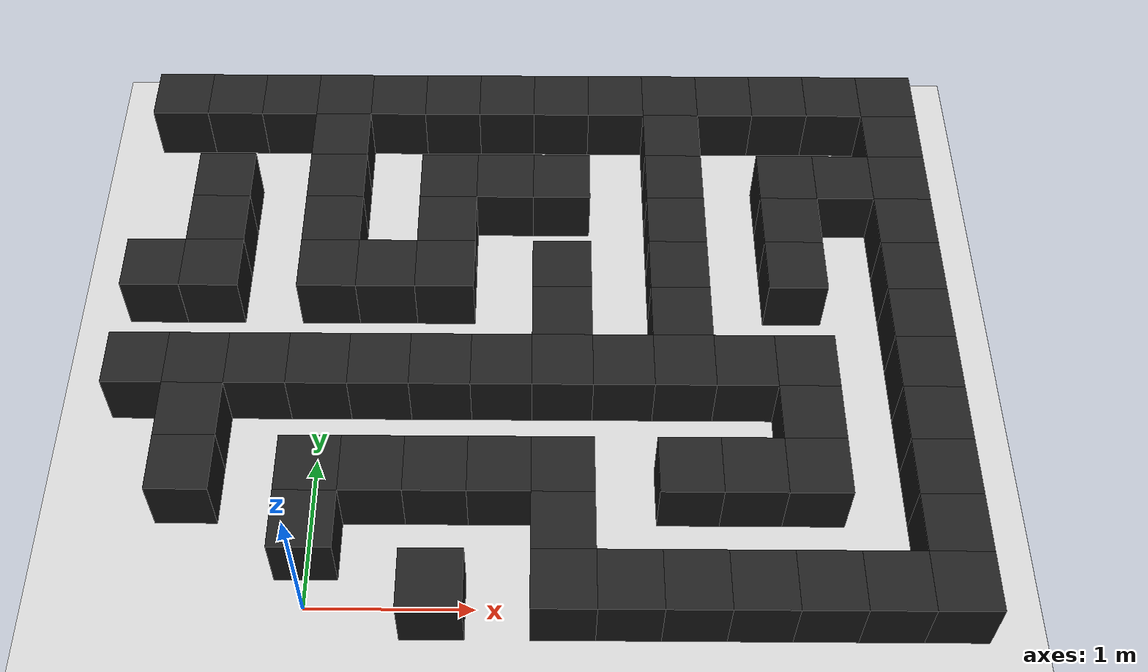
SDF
<sdf version="1.6">
 <world name="maze">
  <include><uri>model://models/sun</uri></include>
  <include><uri>model://models/ground_plane</uri></include>
  <model name="walls">
   <static>true</static>
   <link name="wall_1">
    <pose>3.75 3.75 0.2 0 0 0</pose>
    <visual name="wall_1_visual">
     <geometry><box><size>0.375 0.375 0.4</size></box></geometry>
     <material>
      <script><uri>file://media/materials/scripts/gazebo.material</uri><name>Gazebo/Black</name></script>
     </material>
    </visual>
    <collision name="wall_1_collision"><geometry><box><size>0.375 0.375 0.4</size></box></geometry></collision>
   </link>
   <link name="wall_2">
    <pose>3.75 3.375 0.2 0 0 0</pose>
    <visual name="wall_2_visual">
     <geometry><box><size>0.375 0.375 0.4</size></box></geometry>
     <material>
      <script><uri>file://media/materials/scripts/gazebo.material</uri><name>Gazebo/Black</name></script>
     </material>
    </visual>
    <collision name="wall_2_collision"><geometry><box><size>0.375 0.375 0.4</size></box></geometry></collision>
   </link>
   <link name="wall_3">
    <pose>3.75 3.0 0.2 0 0 0</pose>
    <visual name="wall_3_visual">
     <geometry><box><size>0.375 0.375 0.4</size></box></geometry>
     <material>
      <script><uri>file://media/materials/scripts/gazebo.material</uri><name>Gazebo/Black</name></script>
     </material>
    </visual>
    <collision name="wall_3_collision"><geometry><box><size>0.375 0.375 0.4</size></box></geometry></collision>
   </link>
   <link name="wall_4">
    <pose>3.75 2.625 0.2 0 0 0</pose>
    <visual name="wall_4_visual">
     <geometry><box><size>0.375 0.375 0.4</size></box></geometry>
     <material>
      <script><uri>file://media/materials/scripts/gazebo.material</uri><name>Gazebo/Black</name></script>
     </material>
    </visual>
    <collision name="wall_4_collision"><geometry><box><size>0.375 0.375 0.4</size></box></geometry></collision>
   </link>
   <link name="wall_5">
    <pose>3.75 2.25 0.2 0 0 0</pose>
    <visual name="wall_5_visual">
     <geometry><box><size>0.375 0.375 0.4</size></box></geometry>
     <material>
      <script><uri>file://media/materials/scripts/gazebo.material</uri><name>Gazebo/Black</name></script>
     </material>
    </visual>
    <collision name="wall_5_collision"><geometry><box><size>0.375 0.375 0.4</size></box></geometry></collision>
   </link>
   <link name="wall_6">
    <pose>3.75 1.875 0.2 0 0 0</pose>
    <visual name="wall_6_visual">
     <geometry><box><size>0.375 0.375 0.4</size></box></geometry>
     <material>
      <script><uri>file://media/materials/scripts/gazebo.material</uri><name>Gazebo/Black</name></script>
     </material>
    </visual>
    <collision name="wall_6_collision"><geometry><box><size>0.375 0.375 0.4</size></box></geometry></collision>
   </link>
   <link name="wall_7">
    <pose>3.75 1.5 0.2 0 0 0</pose>
    <visual name="wall_7_visual">
     <geometry><box><size>0.375 0.375 0.4</size></box></geometry>
     <material>
      <script><uri>file://media/materials/scripts/gazebo.material</uri><name>Gazebo/Black</name></script>
     </material>
    </visual>
    <collision name="wall_7_collision"><geometry><box><size>0.375 0.375 0.4</size></box></geometry></collision>
   </link>
   <link name="wall_8">
    <pose>3.75 1.125 0.2 0 0 0</pose>
    <visual name="wall_8_visual">
     <geometry><box><size>0.375 0.375 0.4</size></box></geometry>
     <material>
      <script><uri>file://media/materials/scripts/gazebo.material</uri><name>Gazebo/Black</name></script>
     </material>
    </visual>
    <collision name="wall_8_collision"><geometry><box><size>0.375 0.375 0.4</size></box></geometry></collision>
   </link>
   <link name="wall_9">
    <pose>3.75 0.75 0.2 0 0 0</pose>
    <visual name="wall_9_visual">
     <geometry><box><size>0.375 0.375 0.4</size></box></geometry>
     <material>
      <script><uri>file://media/materials/scripts/gazebo.material</uri><name>Gazebo/Black</name></script>
     </material>
    </visual>
    <collision name="wall_9_collision"><geometry><box><size>0.375 0.375 0.4</size></box></geometry></collision>
   </link>
   <link name="wall_10">
    <pose>3.75 0.375 0.2 0 0 0</pose>
    <visual name="wall_10_visual">
     <geometry><box><size>0.375 0.375 0.4</size></box></geometry>
     <material>
      <script><uri>file://media/materials/scripts/gazebo.material</uri><name>Gazebo/Black</name></script>
     </material>
    </visual>
    <collision name="wall_10_collision"><geometry><box><size>0.375 0.375 0.4</size></box></geometry></collision>
   </link>
   <link name="wall_11">
    <pose>3.75 0.0 0.2 0 0 0</pose>
    <visual name="wall_11_visual">
     <geometry><box><size>0.375 0.375 0.4</size></box></geometry>
     <material>
      <script><uri>file://media/materials/scripts/gazebo.material</uri><name>Gazebo/Black</name></script>
     </material>
    </visual>
    <collision name="wall_11_collision"><geometry><box><size>0.375 0.375 0.4</size></box></geometry></collision>
   </link>
   <link name="wall_22">
    <pose>3.375 3.75 0.2 0 0 0</pose>
    <visual name="wall_22_visual">
     <geometry><box><size>0.375 0.375 0.4</size></box></geometry>
     <material>
      <script><uri>file://media/materials/scripts/gazebo.material</uri><name>Gazebo/Black</name></script>
     </material>
    </visual>
    <collision name="wall_22_collision"><geometry><box><size>0.375 0.375 0.4</size></box></geometry></collision>
   </link>
   <link name="wall_23">
    <pose>3.375 3.0 0.2 0 0 0</pose>
    <visual name="wall_23_visual">
     <geometry><box><size>0.375 0.375 0.4</size></box></geometry>
     <material>
      <script><uri>file://media/materials/scripts/gazebo.material</uri><name>Gazebo/Black</name></script>
     </material>
    </visual>
    <collision name="wall_23_collision"><geometry><box><size>0.375 0.375 0.4</size></box></geometry></collision>
   </link>
   <link name="wall_24">
    <pose>3.375 0.0 0.2 0 0 0</pose>
    <visual name="wall_24_visual">
     <geometry><box><size>0.375 0.375 0.4</size></box></geometry>
     <material>
      <script><uri>file://media/materials/scripts/gazebo.material</uri><name>Gazebo/Black</name></script>
     </material>
    </visual>
    <collision name="wall_24_collision"><geometry><box><size>0.375 0.375 0.4</size></box></geometry></collision>
   </link>
   <link name="wall_26">
    <pose>3.0 3.75 0.2 0 0 0</pose>
    <visual name="wall_26_visual">
     <geometry><box><size>0.375 0.375 0.4</size></box></geometry>
     <material>
      <script><uri>file://media/materials/scripts/gazebo.material</uri><name>Gazebo/Black</name></script>
     </material>
    </visual>
    <collision name="wall_26_collision"><geometry><box><size>0.375 0.375 0.4</size></box></geometry></collision>
   </link>
   <link name="wall_27">
    <pose>3.0 3.0 0.2 0 0 0</pose>
    <visual name="wall_27_visual">
     <geometry><box><size>0.375 0.375 0.4</size></box></geometry>
     <material>
      <script><uri>file://media/materials/scripts/gazebo.material</uri><name>Gazebo/Black</name></script>
     </material>
    </visual>
    <collision name="wall_27_collision"><geometry><box><size>0.375 0.375 0.4</size></box></geometry></collision>
   </link>
   <link name="wall_28">
    <pose>3.0 2.625 0.2 0 0 0</pose>
    <visual name="wall_28_visual">
     <geometry><box><size>0.375 0.375 0.4</size></box></geometry>
     <material>
      <script><uri>file://media/materials/scripts/gazebo.material</uri><name>Gazebo/Black</name></script>
     </material>
    </visual>
    <collision name="wall_28_collision"><geometry><box><size>0.375 0.375 0.4</size></box></geometry></collision>
   </link>
   <link name="wall_29">
    <pose>3.0 2.25 0.2 0 0 0</pose>
    <visual name="wall_29_visual">
     <geometry><box><size>0.375 0.375 0.4</size></box></geometry>
     <material>
      <script><uri>file://media/materials/scripts/gazebo.material</uri><name>Gazebo/Black</name></script>
     </material>
    </visual>
    <collision name="wall_29_collision"><geometry><box><size>0.375 0.375 0.4</size></box></geometry></collision>
   </link>
   <link name="wall_30">
    <pose>3.0 1.5 0.2 0 0 0</pose>
    <visual name="wall_30_visual">
     <geometry><box><size>0.375 0.375 0.4</size></box></geometry>
     <material>
      <script><uri>file://media/materials/scripts/gazebo.material</uri><name>Gazebo/Black</name></script>
     </material>
    </visual>
    <collision name="wall_30_collision"><geometry><box><size>0.375 0.375 0.4</size></box></geometry></collision>
   </link>
   <link name="wall_31">
    <pose>3.0 1.125 0.2 0 0 0</pose>
    <visual name="wall_31_visual">
     <geometry><box><size>0.375 0.375 0.4</size></box></geometry>
     <material>
      <script><uri>file://media/materials/scripts/gazebo.material</uri><name>Gazebo/Black</name></script>
     </material>
    </visual>
    <collision name="wall_31_collision"><geometry><box><size>0.375 0.375 0.4</size></box></geometry></collision>
   </link>
   <link name="wall_32">
    <pose>3.0 0.75 0.2 0 0 0</pose>
    <visual name="wall_32_visual">
     <geometry><box><size>0.375 0.375 0.4</size></box></geometry>
     <material>
      <script><uri>file://media/materials/scripts/gazebo.material</uri><name>Gazebo/Black</name></script>
     </material>
    </visual>
    <collision name="wall_32_collision"><geometry><box><size>0.375 0.375 0.4</size></box></geometry></collision>
   </link>
   <link name="wall_33">
    <pose>3.0 0.0 0.2 0 0 0</pose>
    <visual name="wall_33_visual">
     <geometry><box><size>0.375 0.375 0.4</size></box></geometry>
     <material>
      <script><uri>file://media/materials/scripts/gazebo.material</uri><name>Gazebo/Black</name></script>
     </material>
    </visual>
    <collision name="wall_33_collision"><geometry><box><size>0.375 0.375 0.4</size></box></geometry></collision>
   </link>
   <link name="wall_42">
    <pose>2.625 3.75 0.2 0 0 0</pose>
    <visual name="wall_42_visual">
     <geometry><box><size>0.375 0.375 0.4</size></box></geometry>
     <material>
      <script><uri>file://media/materials/scripts/gazebo.material</uri><name>Gazebo/Black</name></script>
     </material>
    </visual>
    <collision name="wall_42_collision"><geometry><box><size>0.375 0.375 0.4</size></box></geometry></collision>
   </link>
   <link name="wall_43">
    <pose>2.625 1.5 0.2 0 0 0</pose>
    <visual name="wall_43_visual">
     <geometry><box><size>0.375 0.375 0.4</size></box></geometry>
     <material>
      <script><uri>file://media/materials/scripts/gazebo.material</uri><name>Gazebo/Black</name></script>
     </material>
    </visual>
    <collision name="wall_43_collision"><geometry><box><size>0.375 0.375 0.4</size></box></geometry></collision>
   </link>
   <link name="wall_44">
    <pose>2.625 0.75 0.2 0 0 0</pose>
    <visual name="wall_44_visual">
     <geometry><box><size>0.375 0.375 0.4</size></box></geometry>
     <material>
      <script><uri>file://media/materials/scripts/gazebo.material</uri><name>Gazebo/Black</name></script>
     </material>
    </visual>
    <collision name="wall_44_collision"><geometry><box><size>0.375 0.375 0.4</size></box></geometry></collision>
   </link>
   <link name="wall_45">
    <pose>2.625 0.0 0.2 0 0 0</pose>
    <visual name="wall_45_visual">
     <geometry><box><size>0.375 0.375 0.4</size></box></geometry>
     <material>
      <script><uri>file://media/materials/scripts/gazebo.material</uri><name>Gazebo/Black</name></script>
     </material>
    </visual>
    <collision name="wall_45_collision"><geometry><box><size>0.375 0.375 0.4</size></box></geometry></collision>
   </link>
   <link name="wall_49">
    <pose>2.25 3.75 0.2 0 0 0</pose>
    <visual name="wall_49_visual">
     <geometry><box><size>0.375 0.375 0.4</size></box></geometry>
     <material>
      <script><uri>file://media/materials/scripts/gazebo.material</uri><name>Gazebo/Black</name></script>
     </material>
    </visual>
    <collision name="wall_49_collision"><geometry><box><size>0.375 0.375 0.4</size></box></geometry></collision>
   </link>
   <link name="wall_50">
    <pose>2.25 3.375 0.2 0 0 0</pose>
    <visual name="wall_50_visual">
     <geometry><box><size>0.375 0.375 0.4</size></box></geometry>
     <material>
      <script><uri>file://media/materials/scripts/gazebo.material</uri><name>Gazebo/Black</name></script>
     </material>
    </visual>
    <collision name="wall_50_collision"><geometry><box><size>0.375 0.375 0.4</size></box></geometry></collision>
   </link>
   <link name="wall_51">
    <pose>2.25 3.0 0.2 0 0 0</pose>
    <visual name="wall_51_visual">
     <geometry><box><size>0.375 0.375 0.4</size></box></geometry>
     <material>
      <script><uri>file://media/materials/scripts/gazebo.material</uri><name>Gazebo/Black</name></script>
     </material>
    </visual>
    <collision name="wall_51_collision"><geometry><box><size>0.375 0.375 0.4</size></box></geometry></collision>
   </link>
   <link name="wall_52">
    <pose>2.25 2.625 0.2 0 0 0</pose>
    <visual name="wall_52_visual">
     <geometry><box><size>0.375 0.375 0.4</size></box></geometry>
     <material>
      <script><uri>file://media/materials/scripts/gazebo.material</uri><name>Gazebo/Black</name></script>
     </material>
    </visual>
    <collision name="wall_52_collision"><geometry><box><size>0.375 0.375 0.4</size></box></geometry></collision>
   </link>
   <link name="wall_53">
    <pose>2.25 2.25 0.2 0 0 0</pose>
    <visual name="wall_53_visual">
     <geometry><box><size>0.375 0.375 0.4</size></box></geometry>
     <material>
      <script><uri>file://media/materials/scripts/gazebo.material</uri><name>Gazebo/Black</name></script>
     </material>
    </visual>
    <collision name="wall_53_collision"><geometry><box><size>0.375 0.375 0.4</size></box></geometry></collision>
   </link>
   <link name="wall_54">
    <pose>2.25 1.875 0.2 0 0 0</pose>
    <visual name="wall_54_visual">
     <geometry><box><size>0.375 0.375 0.4</size></box></geometry>
     <material>
      <script><uri>file://media/materials/scripts/gazebo.material</uri><name>Gazebo/Black</name></script>
     </material>
    </visual>
    <collision name="wall_54_collision"><geometry><box><size>0.375 0.375 0.4</size></box></geometry></collision>
   </link>
   <link name="wall_55">
    <pose>2.25 1.5 0.2 0 0 0</pose>
    <visual name="wall_55_visual">
     <geometry><box><size>0.375 0.375 0.4</size></box></geometry>
     <material>
      <script><uri>file://media/materials/scripts/gazebo.material</uri><name>Gazebo/Black</name></script>
     </material>
    </visual>
    <collision name="wall_55_collision"><geometry><box><size>0.375 0.375 0.4</size></box></geometry></collision>
   </link>
   <link name="wall_56">
    <pose>2.25 0.75 0.2 0 0 0</pose>
    <visual name="wall_56_visual">
     <geometry><box><size>0.375 0.375 0.4</size></box></geometry>
     <material>
      <script><uri>file://media/materials/scripts/gazebo.material</uri><name>Gazebo/Black</name></script>
     </material>
    </visual>
    <collision name="wall_56_collision"><geometry><box><size>0.375 0.375 0.4</size></box></geometry></collision>
   </link>
   <link name="wall_57">
    <pose>2.25 0.0 0.2 0 0 0</pose>
    <visual name="wall_57_visual">
     <geometry><box><size>0.375 0.375 0.4</size></box></geometry>
     <material>
      <script><uri>file://media/materials/scripts/gazebo.material</uri><name>Gazebo/Black</name></script>
     </material>
    </visual>
    <collision name="wall_57_collision"><geometry><box><size>0.375 0.375 0.4</size></box></geometry></collision>
   </link>
   <link name="wall_64">
    <pose>1.875 3.75 0.2 0 0 0</pose>
    <visual name="wall_64_visual">
     <geometry><box><size>0.375 0.375 0.4</size></box></geometry>
     <material>
      <script><uri>file://media/materials/scripts/gazebo.material</uri><name>Gazebo/Black</name></script>
     </material>
    </visual>
    <collision name="wall_64_collision"><geometry><box><size>0.375 0.375 0.4</size></box></geometry></collision>
   </link>
   <link name="wall_65">
    <pose>1.875 1.5 0.2 0 0 0</pose>
    <visual name="wall_65_visual">
     <geometry><box><size>0.375 0.375 0.4</size></box></geometry>
     <material>
      <script><uri>file://media/materials/scripts/gazebo.material</uri><name>Gazebo/Black</name></script>
     </material>
    </visual>
    <collision name="wall_65_collision"><geometry><box><size>0.375 0.375 0.4</size></box></geometry></collision>
   </link>
   <link name="wall_66">
    <pose>1.875 0.0 0.2 0 0 0</pose>
    <visual name="wall_66_visual">
     <geometry><box><size>0.375 0.375 0.4</size></box></geometry>
     <material>
      <script><uri>file://media/materials/scripts/gazebo.material</uri><name>Gazebo/Black</name></script>
     </material>
    </visual>
    <collision name="wall_66_collision"><geometry><box><size>0.375 0.375 0.4</size></box></geometry></collision>
   </link>
   <link name="wall_70">
    <pose>1.5 3.75 0.2 0 0 0</pose>
    <visual name="wall_70_visual">
     <geometry><box><size>0.375 0.375 0.4</size></box></geometry>
     <material>
      <script><uri>file://media/materials/scripts/gazebo.material</uri><name>Gazebo/Black</name></script>
     </material>
    </visual>
    <collision name="wall_70_collision"><geometry><box><size>0.375 0.375 0.4</size></box></geometry></collision>
   </link>
   <link name="wall_71">
    <pose>1.5 3.0 0.2 0 0 0</pose>
    <visual name="wall_71_visual">
     <geometry><box><size>0.375 0.375 0.4</size></box></geometry>
     <material>
      <script><uri>file://media/materials/scripts/gazebo.material</uri><name>Gazebo/Black</name></script>
     </material>
    </visual>
    <collision name="wall_71_collision"><geometry><box><size>0.375 0.375 0.4</size></box></geometry></collision>
   </link>
   <link name="wall_72">
    <pose>1.5 2.25 0.2 0 0 0</pose>
    <visual name="wall_72_visual">
     <geometry><box><size>0.375 0.375 0.4</size></box></geometry>
     <material>
      <script><uri>file://media/materials/scripts/gazebo.material</uri><name>Gazebo/Black</name></script>
     </material>
    </visual>
    <collision name="wall_72_collision"><geometry><box><size>0.375 0.375 0.4</size></box></geometry></collision>
   </link>
   <link name="wall_73">
    <pose>1.5 1.875 0.2 0 0 0</pose>
    <visual name="wall_73_visual">
     <geometry><box><size>0.375 0.375 0.4</size></box></geometry>
     <material>
      <script><uri>file://media/materials/scripts/gazebo.material</uri><name>Gazebo/Black</name></script>
     </material>
    </visual>
    <collision name="wall_73_collision"><geometry><box><size>0.375 0.375 0.4</size></box></geometry></collision>
   </link>
   <link name="wall_74">
    <pose>1.5 1.5 0.2 0 0 0</pose>
    <visual name="wall_74_visual">
     <geometry><box><size>0.375 0.375 0.4</size></box></geometry>
     <material>
      <script><uri>file://media/materials/scripts/gazebo.material</uri><name>Gazebo/Black</name></script>
     </material>
    </visual>
    <collision name="wall_74_collision"><geometry><box><size>0.375 0.375 0.4</size></box></geometry></collision>
   </link>
   <link name="wall_75">
    <pose>1.5 0.75 0.2 0 0 0</pose>
    <visual name="wall_75_visual">
     <geometry><box><size>0.375 0.375 0.4</size></box></geometry>
     <material>
      <script><uri>file://media/materials/scripts/gazebo.material</uri><name>Gazebo/Black</name></script>
     </material>
    </visual>
    <collision name="wall_75_collision"><geometry><box><size>0.375 0.375 0.4</size></box></geometry></collision>
   </link>
   <link name="wall_76">
    <pose>1.5 0.375 0.2 0 0 0</pose>
    <visual name="wall_76_visual">
     <geometry><box><size>0.375 0.375 0.4</size></box></geometry>
     <material>
      <script><uri>file://media/materials/scripts/gazebo.material</uri><name>Gazebo/Black</name></script>
     </material>
    </visual>
    <collision name="wall_76_collision"><geometry><box><size>0.375 0.375 0.4</size></box></geometry></collision>
   </link>
   <link name="wall_77">
    <pose>1.5 0.0 0.2 0 0 0</pose>
    <visual name="wall_77_visual">
     <geometry><box><size>0.375 0.375 0.4</size></box></geometry>
     <material>
      <script><uri>file://media/materials/scripts/gazebo.material</uri><name>Gazebo/Black</name></script>
     </material>
    </visual>
    <collision name="wall_77_collision"><geometry><box><size>0.375 0.375 0.4</size></box></geometry></collision>
   </link>
   <link name="wall_86">
    <pose>1.125 3.75 0.2 0 0 0</pose>
    <visual name="wall_86_visual">
     <geometry><box><size>0.375 0.375 0.4</size></box></geometry>
     <material>
      <script><uri>file://media/materials/scripts/gazebo.material</uri><name>Gazebo/Black</name></script>
     </material>
    </visual>
    <collision name="wall_86_collision"><geometry><box><size>0.375 0.375 0.4</size></box></geometry></collision>
   </link>
   <link name="wall_87">
    <pose>1.125 3.0 0.2 0 0 0</pose>
    <visual name="wall_87_visual">
     <geometry><box><size>0.375 0.375 0.4</size></box></geometry>
     <material>
      <script><uri>file://media/materials/scripts/gazebo.material</uri><name>Gazebo/Black</name></script>
     </material>
    </visual>
    <collision name="wall_87_collision"><geometry><box><size>0.375 0.375 0.4</size></box></geometry></collision>
   </link>
   <link name="wall_88">
    <pose>1.125 1.5 0.2 0 0 0</pose>
    <visual name="wall_88_visual">
     <geometry><box><size>0.375 0.375 0.4</size></box></geometry>
     <material>
      <script><uri>file://media/materials/scripts/gazebo.material</uri><name>Gazebo/Black</name></script>
     </material>
    </visual>
    <collision name="wall_88_collision"><geometry><box><size>0.375 0.375 0.4</size></box></geometry></collision>
   </link>
   <link name="wall_89">
    <pose>1.125 0.75 0.2 0 0 0</pose>
    <visual name="wall_89_visual">
     <geometry><box><size>0.375 0.375 0.4</size></box></geometry>
     <material>
      <script><uri>file://media/materials/scripts/gazebo.material</uri><name>Gazebo/Black</name></script>
     </material>
    </visual>
    <collision name="wall_89_collision"><geometry><box><size>0.375 0.375 0.4</size></box></geometry></collision>
   </link>
   <link name="wall_93">
    <pose>0.75 3.75 0.2 0 0 0</pose>
    <visual name="wall_93_visual">
     <geometry><box><size>0.375 0.375 0.4</size></box></geometry>
     <material>
      <script><uri>file://media/materials/scripts/gazebo.material</uri><name>Gazebo/Black</name></script>
     </material>
    </visual>
    <collision name="wall_93_collision"><geometry><box><size>0.375 0.375 0.4</size></box></geometry></collision>
   </link>
   <link name="wall_94">
    <pose>0.75 3.0 0.2 0 0 0</pose>
    <visual name="wall_94_visual">
     <geometry><box><size>0.375 0.375 0.4</size></box></geometry>
     <material>
      <script><uri>file://media/materials/scripts/gazebo.material</uri><name>Gazebo/Black</name></script>
     </material>
    </visual>
    <collision name="wall_94_collision"><geometry><box><size>0.375 0.375 0.4</size></box></geometry></collision>
   </link>
   <link name="wall_95">
    <pose>0.75 2.625 0.2 0 0 0</pose>
    <visual name="wall_95_visual">
     <geometry><box><size>0.375 0.375 0.4</size></box></geometry>
     <material>
      <script><uri>file://media/materials/scripts/gazebo.material</uri><name>Gazebo/Black</name></script>
     </material>
    </visual>
    <collision name="wall_95_collision"><geometry><box><size>0.375 0.375 0.4</size></box></geometry></collision>
   </link>
   <link name="wall_96">
    <pose>0.75 2.25 0.2 0 0 0</pose>
    <visual name="wall_96_visual">
     <geometry><box><size>0.375 0.375 0.4</size></box></geometry>
     <material>
      <script><uri>file://media/materials/scripts/gazebo.material</uri><name>Gazebo/Black</name></script>
     </material>
    </visual>
    <collision name="wall_96_collision"><geometry><box><size>0.375 0.375 0.4</size></box></geometry></collision>
   </link>
   <link name="wall_97">
    <pose>0.75 1.5 0.2 0 0 0</pose>
    <visual name="wall_97_visual">
     <geometry><box><size>0.375 0.375 0.4</size></box></geometry>
     <material>
      <script><uri>file://media/materials/scripts/gazebo.material</uri><name>Gazebo/Black</name></script>
     </material>
    </visual>
    <collision name="wall_97_collision"><geometry><box><size>0.375 0.375 0.4</size></box></geometry></collision>
   </link>
   <link name="wall_98">
    <pose>0.75 0.75 0.2 0 0 0</pose>
    <visual name="wall_98_visual">
     <geometry><box><size>0.375 0.375 0.4</size></box></geometry>
     <material>
      <script><uri>file://media/materials/scripts/gazebo.material</uri><name>Gazebo/Black</name></script>
     </material>
    </visual>
    <collision name="wall_98_collision"><geometry><box><size>0.375 0.375 0.4</size></box></geometry></collision>
   </link>
   <link name="wall_99">
    <pose>0.75 0.0 0.2 0 0 0</pose>
    <visual name="wall_99_visual">
     <geometry><box><size>0.375 0.375 0.4</size></box></geometry>
     <material>
      <script><uri>file://media/materials/scripts/gazebo.material</uri><name>Gazebo/Black</name></script>
     </material>
    </visual>
    <collision name="wall_99_collision"><geometry><box><size>0.375 0.375 0.4</size></box></geometry></collision>
   </link>
   <link name="wall_106">
    <pose>0.375 3.75 0.2 0 0 0</pose>
    <visual name="wall_106_visual">
     <geometry><box><size>0.375 0.375 0.4</size></box></geometry>
     <material>
      <script><uri>file://media/materials/scripts/gazebo.material</uri><name>Gazebo/Black</name></script>
     </material>
    </visual>
    <collision name="wall_106_collision"><geometry><box><size>0.375 0.375 0.4</size></box></geometry></collision>
   </link>
   <link name="wall_107">
    <pose>0.375 2.25 0.2 0 0 0</pose>
    <visual name="wall_107_visual">
     <geometry><box><size>0.375 0.375 0.4</size></box></geometry>
     <material>
      <script><uri>file://media/materials/scripts/gazebo.material</uri><name>Gazebo/Black</name></script>
     </material>
    </visual>
    <collision name="wall_107_collision"><geometry><box><size>0.375 0.375 0.4</size></box></geometry></collision>
   </link>
   <link name="wall_108">
    <pose>0.375 1.5 0.2 0 0 0</pose>
    <visual name="wall_108_visual">
     <geometry><box><size>0.375 0.375 0.4</size></box></geometry>
     <material>
      <script><uri>file://media/materials/scripts/gazebo.material</uri><name>Gazebo/Black</name></script>
     </material>
    </visual>
    <collision name="wall_108_collision"><geometry><box><size>0.375 0.375 0.4</size></box></geometry></collision>
   </link>
   <link name="wall_109">
    <pose>0.375 0.75 0.2 0 0 0</pose>
    <visual name="wall_109_visual">
     <geometry><box><size>0.375 0.375 0.4</size></box></geometry>
     <material>
      <script><uri>file://media/materials/scripts/gazebo.material</uri><name>Gazebo/Black</name></script>
     </material>
    </visual>
    <collision name="wall_109_collision"><geometry><box><size>0.375 0.375 0.4</size></box></geometry></collision>
   </link>
   <link name="wall_115">
    <pose>0.0 3.75 0.2 0 0 0</pose>
    <visual name="wall_115_visual">
     <geometry><box><size>0.375 0.375 0.4</size></box></geometry>
     <material>
      <script><uri>file://media/materials/scripts/gazebo.material</uri><name>Gazebo/Black</name></script>
     </material>
    </visual>
    <collision name="wall_115_collision"><geometry><box><size>0.375 0.375 0.4</size></box></geometry></collision>
   </link>
   <link name="wall_116">
    <pose>0.0 3.375 0.2 0 0 0</pose>
    <visual name="wall_116_visual">
     <geometry><box><size>0.375 0.375 0.4</size></box></geometry>
     <material>
      <script><uri>file://media/materials/scripts/gazebo.material</uri><name>Gazebo/Black</name></script>
     </material>
    </visual>
    <collision name="wall_116_collision"><geometry><box><size>0.375 0.375 0.4</size></box></geometry></collision>
   </link>
   <link name="wall_117">
    <pose>0.0 3.0 0.2 0 0 0</pose>
    <visual name="wall_117_visual">
     <geometry><box><size>0.375 0.375 0.4</size></box></geometry>
     <material>
      <script><uri>file://media/materials/scripts/gazebo.material</uri><name>Gazebo/Black</name></script>
     </material>
    </visual>
    <collision name="wall_117_collision"><geometry><box><size>0.375 0.375 0.4</size></box></geometry></collision>
   </link>
   <link name="wall_118">
    <pose>0.0 2.625 0.2 0 0 0</pose>
    <visual name="wall_118_visual">
     <geometry><box><size>0.375 0.375 0.4</size></box></geometry>
     <material>
      <script><uri>file://media/materials/scripts/gazebo.material</uri><name>Gazebo/Black</name></script>
     </material>
    </visual>
    <collision name="wall_118_collision"><geometry><box><size>0.375 0.375 0.4</size></box></geometry></collision>
   </link>
   <link name="wall_119">
    <pose>0.0 2.25 0.2 0 0 0</pose>
    <visual name="wall_119_visual">
     <geometry><box><size>0.375 0.375 0.4</size></box></geometry>
     <material>
      <script><uri>file://media/materials/scripts/gazebo.material</uri><name>Gazebo/Black</name></script>
     </material>
    </visual>
    <collision name="wall_119_collision"><geometry><box><size>0.375 0.375 0.4</size></box></geometry></collision>
   </link>
   <link name="wall_120">
    <pose>0.0 1.5 0.2 0 0 0</pose>
    <visual name="wall_120_visual">
     <geometry><box><size>0.375 0.375 0.4</size></box></geometry>
     <material>
      <script><uri>file://media/materials/scripts/gazebo.material</uri><name>Gazebo/Black</name></script>
     </material>
    </visual>
    <collision name="wall_120_collision"><geometry><box><size>0.375 0.375 0.4</size></box></geometry></collision>
   </link>
   <link name="wall_121">
    <pose>0.0 0.75 0.2 0 0 0</pose>
    <visual name="wall_121_visual">
     <geometry><box><size>0.375 0.375 0.4</size></box></geometry>
     <material>
      <script><uri>file://media/materials/scripts/gazebo.material</uri><name>Gazebo/Black</name></script>
     </material>
    </visual>
    <collision name="wall_121_collision"><geometry><box><size>0.375 0.375 0.4</size></box></geometry></collision>
   </link>
   <link name="wall_122">
    <pose>0.0 0.375 0.2 0 0 0</pose>
    <visual name="wall_122_visual">
     <geometry><box><size>0.375 0.375 0.4</size></box></geometry>
     <material>
      <script><uri>file://media/materials/scripts/gazebo.material</uri><name>Gazebo/Black</name></script>
     </material>
    </visual>
    <collision name="wall_122_collision"><geometry><box><size>0.375 0.375 0.4</size></box></geometry></collision>
   </link>
   <link name="wall_130">
    <pose>-0.375 3.75 0.2 0 0 0</pose>
    <visual name="wall_130_visual">
     <geometry><box><size>0.375 0.375 0.4</size></box></geometry>
     <material>
      <script><uri>file://media/materials/scripts/gazebo.material</uri><name>Gazebo/Black</name></script>
     </material>
    </visual>
    <collision name="wall_130_collision"><geometry><box><size>0.375 0.375 0.4</size></box></geometry></collision>
   </link>
   <link name="wall_131">
    <pose>-0.375 1.5 0.2 0 0 0</pose>
    <visual name="wall_131_visual">
     <geometry><box><size>0.375 0.375 0.4</size></box></geometry>
     <material>
      <script><uri>file://media/materials/scripts/gazebo.material</uri><name>Gazebo/Black</name></script>
     </material>
    </visual>
    <collision name="wall_131_collision"><geometry><box><size>0.375 0.375 0.4</size></box></geometry></collision>
   </link>
   <link name="wall_136">
    <pose>-0.75 3.75 0.2 0 0 0</pose>
    <visual name="wall_136_visual">
     <geometry><box><size>0.375 0.375 0.4</size></box></geometry>
     <material>
      <script><uri>file://media/materials/scripts/gazebo.material</uri><name>Gazebo/Black</name></script>
     </material>
    </visual>
    <collision name="wall_136_collision"><geometry><box><size>0.375 0.375 0.4</size></box></geometry></collision>
   </link>
   <link name="wall_137">
    <pose>-0.75 3.0 0.2 0 0 0</pose>
    <visual name="wall_137_visual">
     <geometry><box><size>0.375 0.375 0.4</size></box></geometry>
     <material>
      <script><uri>file://media/materials/scripts/gazebo.material</uri><name>Gazebo/Black</name></script>
     </material>
    </visual>
    <collision name="wall_137_collision"><geometry><box><size>0.375 0.375 0.4</size></box></geometry></collision>
   </link>
   <link name="wall_138">
    <pose>-0.75 2.625 0.2 0 0 0</pose>
    <visual name="wall_138_visual">
     <geometry><box><size>0.375 0.375 0.4</size></box></geometry>
     <material>
      <script><uri>file://media/materials/scripts/gazebo.material</uri><name>Gazebo/Black</name></script>
     </material>
    </visual>
    <collision name="wall_138_collision"><geometry><box><size>0.375 0.375 0.4</size></box></geometry></collision>
   </link>
   <link name="wall_139">
    <pose>-0.75 2.25 0.2 0 0 0</pose>
    <visual name="wall_139_visual">
     <geometry><box><size>0.375 0.375 0.4</size></box></geometry>
     <material>
      <script><uri>file://media/materials/scripts/gazebo.material</uri><name>Gazebo/Black</name></script>
     </material>
    </visual>
    <collision name="wall_139_collision"><geometry><box><size>0.375 0.375 0.4</size></box></geometry></collision>
   </link>
   <link name="wall_140">
    <pose>-0.75 1.5 0.2 0 0 0</pose>
    <visual name="wall_140_visual">
     <geometry><box><size>0.375 0.375 0.4</size></box></geometry>
     <material>
      <script><uri>file://media/materials/scripts/gazebo.material</uri><name>Gazebo/Black</name></script>
     </material>
    </visual>
    <collision name="wall_140_collision"><geometry><box><size>0.375 0.375 0.4</size></box></geometry></collision>
   </link>
   <link name="wall_141">
    <pose>-0.75 1.125 0.2 0 0 0</pose>
    <visual name="wall_141_visual">
     <geometry><box><size>0.375 0.375 0.4</size></box></geometry>
     <material>
      <script><uri>file://media/materials/scripts/gazebo.material</uri><name>Gazebo/Black</name></script>
     </material>
    </visual>
    <collision name="wall_141_collision"><geometry><box><size>0.375 0.375 0.4</size></box></geometry></collision>
   </link>
   <link name="wall_142">
    <pose>-0.75 0.75 0.2 0 0 0</pose>
    <visual name="wall_142_visual">
     <geometry><box><size>0.375 0.375 0.4</size></box></geometry>
     <material>
      <script><uri>file://media/materials/scripts/gazebo.material</uri><name>Gazebo/Black</name></script>
     </material>
    </visual>
    <collision name="wall_142_collision"><geometry><box><size>0.375 0.375 0.4</size></box></geometry></collision>
   </link>
   <link name="wall_152">
    <pose>-1.125 3.75 0.2 0 0 0</pose>
    <visual name="wall_152_visual">
     <geometry><box><size>0.375 0.375 0.4</size></box></geometry>
     <material>
      <script><uri>file://media/materials/scripts/gazebo.material</uri><name>Gazebo/Black</name></script>
     </material>
    </visual>
    <collision name="wall_152_collision"><geometry><box><size>0.375 0.375 0.4</size></box></geometry></collision>
   </link>
   <link name="wall_153">
    <pose>-1.125 2.25 0.2 0 0 0</pose>
    <visual name="wall_153_visual">
     <geometry><box><size>0.375 0.375 0.4</size></box></geometry>
     <material>
      <script><uri>file://media/materials/scripts/gazebo.material</uri><name>Gazebo/Black</name></script>
     </material>
    </visual>
    <collision name="wall_153_collision"><geometry><box><size>0.375 0.375 0.4</size></box></geometry></collision>
   </link>
   <link name="wall_154">
    <pose>-1.125 1.5 0.2 0 0 0</pose>
    <visual name="wall_154_visual">
     <geometry><box><size>0.375 0.375 0.4</size></box></geometry>
     <material>
      <script><uri>file://media/materials/scripts/gazebo.material</uri><name>Gazebo/Black</name></script>
     </material>
    </visual>
    <collision name="wall_154_collision"><geometry><box><size>0.375 0.375 0.4</size></box></geometry></collision>
   </link>
  </model>
 </world>
</sdf>
